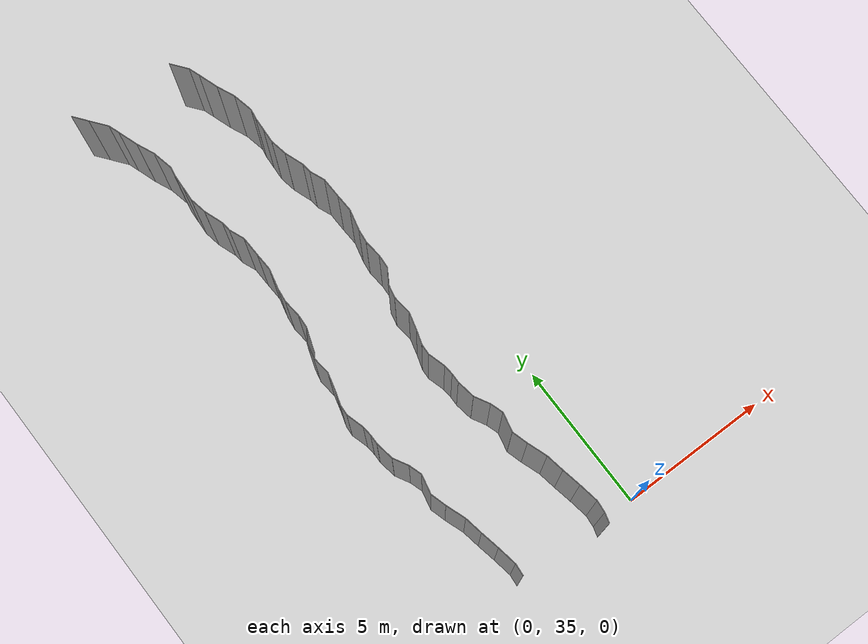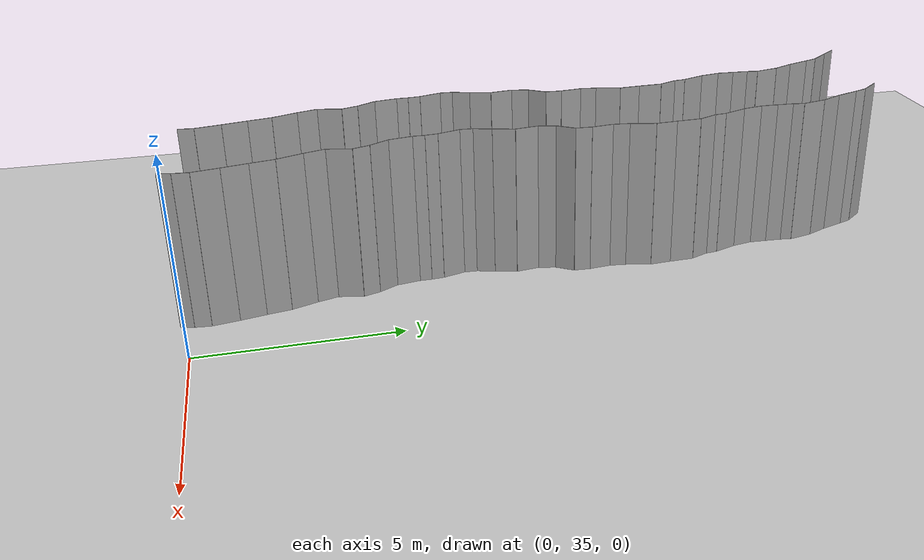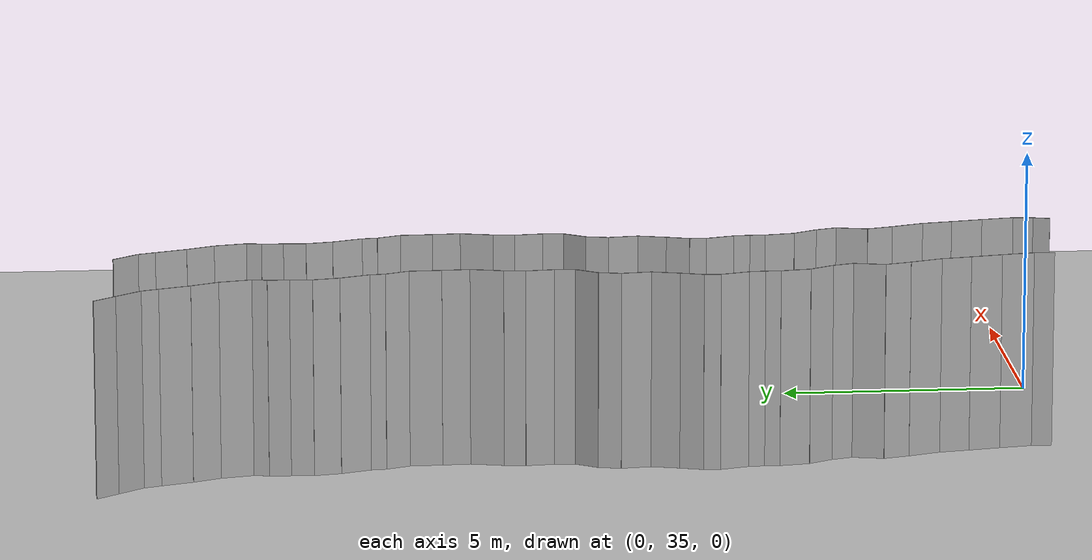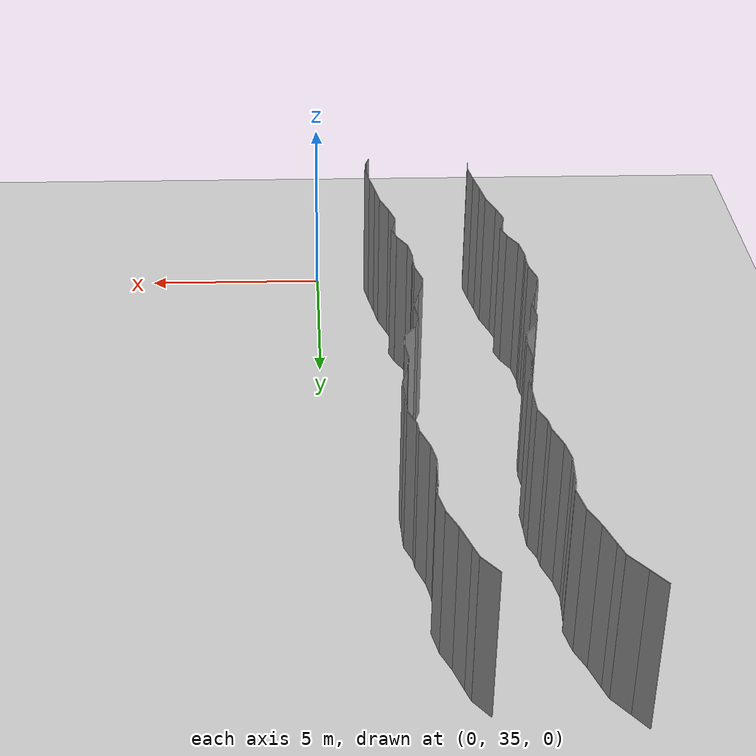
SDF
<sdf version="1.6">
 <world name="default">
  <model name="ground_plane">
   <static>1</static>
   <link name="link">
    <collision name="collision">
     <geometry><plane><normal>0 0 1</normal><size>200 200</size></plane></geometry>
     <surface><friction><ode><mu>100</mu><mu2>50</mu2></ode></friction></surface>
    </collision>
    <visual name="visual">
     <cast_shadows>0</cast_shadows>
     <geometry><plane><normal>0 0 1</normal><size>200 200</size></plane></geometry>
     <material>
      <script><uri>file://media/materials/scripts/gazebo.material</uri><name>Gazebo/Grey</name></script>
     </material>
    </visual>
   </link>
   <pose>0 100 0 0 -0 0</pose>
  </model>
  <model name="wall_149">
   <static>1</static>
   <pose>-1.4875432339443924 34.91481203085667 2 0 0 -0.2809620271610667</pose>
   <link name="link">
    <collision name="collision"><geometry><box><size>0.02 0.347489428314 4</size></box></geometry></collision>
    <visual name="visual">
     <material>
      <script><name>Gazebo/Grey</name><uri>file://media/materials/scripts/gazebo.material</uri></script>
     </material>
     <geometry><box><size>0.02 0.347489428314 4</size></box></geometry>
    </visual>
   </link>
  </model>
  <model name="wall_150">
   <static>1</static>
   <pose>-4.420657843224259 35.28480763675786 2 0 0 -0.09187649113899805</pose>
   <link name="link">
    <collision name="collision"><geometry><box><size>0.02 0.4078473137 4</size></box></geometry></collision>
    <visual name="visual">
     <material>
      <script><name>Gazebo/Grey</name><uri>file://media/materials/scripts/gazebo.material</uri></script>
     </material>
     <geometry><box><size>0.02 0.4078473137 4</size></box></geometry>
    </visual>
   </link>
  </model>
  <model name="wall_151">
   <static>1</static>
   <pose>-1.4206578432242587 35.28480763675786 2 0 0 -0.09187649113899805</pose>
   <link name="link">
    <collision name="collision"><geometry><box><size>0.02 0.4078473137 4</size></box></geometry></collision>
    <visual name="visual">
     <material>
      <script><name>Gazebo/Grey</name><uri>file://media/materials/scripts/gazebo.material</uri></script>
     </material>
     <geometry><box><size>0.02 0.4078473137 4</size></box></geometry>
    </visual>
   </link>
  </model>
  <model name="wall_152">
   <static>1</static>
   <pose>-4.45735182879271 35.81775944817107 2 0 0 0.16639322718188904</pose>
   <link name="link">
    <collision name="collision"><geometry><box><size>0.02 0.669016561162 4</size></box></geometry></collision>
    <visual name="visual">
     <material>
      <script><name>Gazebo/Grey</name><uri>file://media/materials/scripts/gazebo.material</uri></script>
     </material>
     <geometry><box><size>0.02 0.669016561162 4</size></box></geometry>
    </visual>
   </link>
  </model>
  <model name="wall_153">
   <static>1</static>
   <pose>-1.45735182879271 35.81775944817107 2 0 0 0.16639322718188904</pose>
   <link name="link">
    <collision name="collision"><geometry><box><size>0.02 0.669016561162 4</size></box></geometry></collision>
    <visual name="visual">
     <material>
      <script><name>Gazebo/Grey</name><uri>file://media/materials/scripts/gazebo.material</uri></script>
     </material>
     <geometry><box><size>0.02 0.669016561162 4</size></box></geometry>
    </visual>
   </link>
  </model>
  <model name="wall_154">
   <static>1</static>
   <pose>-4.575995451840966 36.46799275689906 2 0 0 0.19490656850193167</pose>
   <link name="link">
    <collision name="collision"><geometry><box><size>0.02 0.653055238869 4</size></box></geometry></collision>
    <visual name="visual">
     <material>
      <script><name>Gazebo/Grey</name><uri>file://media/materials/scripts/gazebo.material</uri></script>
     </material>
     <geometry><box><size>0.02 0.653055238869 4</size></box></geometry>
    </visual>
   </link>
  </model>
  <model name="wall_155">
   <static>1</static>
   <pose>-1.5759954518409662 36.46799275689906 2 0 0 0.19490656850193167</pose>
   <link name="link">
    <collision name="collision"><geometry><box><size>0.02 0.653055238869 4</size></box></geometry></collision>
    <visual name="visual">
     <material>
      <script><name>Gazebo/Grey</name><uri>file://media/materials/scripts/gazebo.material</uri></script>
     </material>
     <geometry><box><size>0.02 0.653055238869 4</size></box></geometry>
    </visual>
   </link>
  </model>
  <model name="wall_156">
   <static>1</static>
   <pose>-4.6920308699164615 37.092213756995 2 0 0 0.17202226703404905</pose>
   <link name="link">
    <collision name="collision"><geometry><box><size>0.02 0.61685627618 4</size></box></geometry></collision>
    <visual name="visual">
     <material>
      <script><name>Gazebo/Grey</name><uri>file://media/materials/scripts/gazebo.material</uri></script>
     </material>
     <geometry><box><size>0.02 0.61685627618 4</size></box></geometry>
    </visual>
   </link>
  </model>
  <model name="wall_157">
   <static>1</static>
   <pose>-1.6920308699164615 37.092213756995 2 0 0 0.17202226703404905</pose>
   <link name="link">
    <collision name="collision"><geometry><box><size>0.02 0.61685627618 4</size></box></geometry></collision>
    <visual name="visual">
     <material>
      <script><name>Gazebo/Grey</name><uri>file://media/materials/scripts/gazebo.material</uri></script>
     </material>
     <geometry><box><size>0.02 0.61685627618 4</size></box></geometry>
    </visual>
   </link>
  </model>
  <model name="wall_158">
   <static>1</static>
   <pose>-4.85910208446116 37.72054103686596 2 0 0 0.33864497295321705</pose>
   <link name="link">
    <collision name="collision"><geometry><box><size>0.02 0.687975815708 4</size></box></geometry></collision>
    <visual name="visual">
     <material>
      <script><name>Gazebo/Grey</name><uri>file://media/materials/scripts/gazebo.material</uri></script>
     </material>
     <geometry><box><size>0.02 0.687975815708 4</size></box></geometry>
    </visual>
   </link>
  </model>
  <model name="wall_159">
   <static>1</static>
   <pose>-1.8591020844611599 37.72054103686596 2 0 0 0.33864497295321705</pose>
   <link name="link">
    <collision name="collision"><geometry><box><size>0.02 0.687975815708 4</size></box></geometry></collision>
    <visual name="visual">
     <material>
      <script><name>Gazebo/Grey</name><uri>file://media/materials/scripts/gazebo.material</uri></script>
     </material>
     <geometry><box><size>0.02 0.687975815708 4</size></box></geometry>
    </visual>
   </link>
  </model>
  <model name="wall_160">
   <static>1</static>
   <pose>-5.0479114627293376 38.305604805208546 2 0 0 0.27855752877716256</pose>
   <link name="link">
    <collision name="collision"><geometry><box><size>0.02 0.542121972802 4</size></box></geometry></collision>
    <visual name="visual">
     <material>
      <script><name>Gazebo/Grey</name><uri>file://media/materials/scripts/gazebo.material</uri></script>
     </material>
     <geometry><box><size>0.02 0.542121972802 4</size></box></geometry>
    </visual>
   </link>
  </model>
  <model name="wall_161">
   <static>1</static>
   <pose>-2.0479114627293376 38.305604805208546 2 0 0 0.27855752877716256</pose>
   <link name="link">
    <collision name="collision"><geometry><box><size>0.02 0.542121972802 4</size></box></geometry></collision>
    <visual name="visual">
     <material>
      <script><name>Gazebo/Grey</name><uri>file://media/materials/scripts/gazebo.material</uri></script>
     </material>
     <geometry><box><size>0.02 0.542121972802 4</size></box></geometry>
    </visual>
   </link>
  </model>
  <model name="wall_162">
   <static>1</static>
   <pose>-5.052341891362449 38.881155504039235 2 0 0 -0.2190219485625343</pose>
   <link name="link">
    <collision name="collision"><geometry><box><size>0.02 0.645292321796 4</size></box></geometry></collision>
    <visual name="visual">
     <material>
      <script><name>Gazebo/Grey</name><uri>file://media/materials/scripts/gazebo.material</uri></script>
     </material>
     <geometry><box><size>0.02 0.645292321796 4</size></box></geometry>
    </visual>
   </link>
  </model>
  <model name="wall_163">
   <static>1</static>
   <pose>-2.052341891362449 38.881155504039235 2 0 0 -0.2190219485625343</pose>
   <link name="link">
    <collision name="collision"><geometry><box><size>0.02 0.645292321796 4</size></box></geometry></collision>
    <visual name="visual">
     <material>
      <script><name>Gazebo/Grey</name><uri>file://media/materials/scripts/gazebo.material</uri></script>
     </material>
     <geometry><box><size>0.02 0.645292321796 4</size></box></geometry>
    </visual>
   </link>
  </model>
  <model name="wall_164">
   <static>1</static>
   <pose>-5.049083734035631 39.407015942051316 2 0 0 0.30690374834488793</pose>
   <link name="link">
    <collision name="collision"><geometry><box><size>0.02 0.442521791259 4</size></box></geometry></collision>
    <visual name="visual">
     <material>
      <script><name>Gazebo/Grey</name><uri>file://media/materials/scripts/gazebo.material</uri></script>
     </material>
     <geometry><box><size>0.02 0.442521791259 4</size></box></geometry>
    </visual>
   </link>
  </model>
  <model name="wall_165">
   <static>1</static>
   <pose>-2.049083734035631 39.407015942051316 2 0 0 0.30690374834488793</pose>
   <link name="link">
    <collision name="collision"><geometry><box><size>0.02 0.442521791259 4</size></box></geometry></collision>
    <visual name="visual">
     <material>
      <script><name>Gazebo/Grey</name><uri>file://media/materials/scripts/gazebo.material</uri></script>
     </material>
     <geometry><box><size>0.02 0.442521791259 4</size></box></geometry>
    </visual>
   </link>
  </model>
  <model name="wall_166">
   <static>1</static>
   <pose>-5.2474371191167215 39.8571862735975 2 0 0 0.5025931576825445</pose>
   <link name="link">
    <collision name="collision"><geometry><box><size>0.02 0.546019034612 4</size></box></geometry></collision>
    <visual name="visual">
     <material>
      <script><name>Gazebo/Grey</name><uri>file://media/materials/scripts/gazebo.material</uri></script>
     </material>
     <geometry><box><size>0.02 0.546019034612 4</size></box></geometry>
    </visual>
   </link>
  </model>
  <model name="wall_167">
   <static>1</static>
   <pose>-2.2474371191167215 39.8571862735975 2 0 0 0.5025931576825445</pose>
   <link name="link">
    <collision name="collision"><geometry><box><size>0.02 0.546019034612 4</size></box></geometry></collision>
    <visual name="visual">
     <material>
      <script><name>Gazebo/Grey</name><uri>file://media/materials/scripts/gazebo.material</uri></script>
     </material>
     <geometry><box><size>0.02 0.546019034612 4</size></box></geometry>
    </visual>
   </link>
  </model>
  <model name="wall_168">
   <static>1</static>
   <pose>-5.4270500522193075 40.3981205687737 2 0 0 0.15812054965367323</pose>
   <link name="link">
    <collision name="collision"><geometry><box><size>0.02 0.610994416047 4</size></box></geometry></collision>
    <visual name="visual">
     <material>
      <script><name>Gazebo/Grey</name><uri>file://media/materials/scripts/gazebo.material</uri></script>
     </material>
     <geometry><box><size>0.02 0.610994416047 4</size></box></geometry>
    </visual>
   </link>
  </model>
  <model name="wall_169">
   <static>1</static>
   <pose>-2.4270500522193075 40.3981205687737 2 0 0 0.15812054965367323</pose>
   <link name="link">
    <collision name="collision"><geometry><box><size>0.02 0.610994416047 4</size></box></geometry></collision>
    <visual name="visual">
     <material>
      <script><name>Gazebo/Grey</name><uri>file://media/materials/scripts/gazebo.material</uri></script>
     </material>
     <geometry><box><size>0.02 0.610994416047 4</size></box></geometry>
    </visual>
   </link>
  </model>
  <model name="wall_170">
   <static>1</static>
   <pose>-5.471975973119589 40.85341780441025 2 0 0 -0.020688438781766887</pose>
   <link name="link">
    <collision name="collision"><geometry><box><size>0.02 0.307287987794 4</size></box></geometry></collision>
    <visual name="visual">
     <material>
      <script><name>Gazebo/Grey</name><uri>file://media/materials/scripts/gazebo.material</uri></script>
     </material>
     <geometry><box><size>0.02 0.307287987794 4</size></box></geometry>
    </visual>
   </link>
  </model>
  <model name="wall_171">
   <static>1</static>
   <pose>-2.471975973119589 40.85341780441025 2 0 0 -0.020688438781766887</pose>
   <link name="link">
    <collision name="collision"><geometry><box><size>0.02 0.307287987794 4</size></box></geometry></collision>
    <visual name="visual">
     <material>
      <script><name>Gazebo/Grey</name><uri>file://media/materials/scripts/gazebo.material</uri></script>
     </material>
     <geometry><box><size>0.02 0.307287987794 4</size></box></geometry>
    </visual>
   </link>
  </model>
  <model name="wall_172">
   <static>1</static>
   <pose>-5.482246295521538 41.170368032284514 2 0 0 0.08215106482147039</pose>
   <link name="link">
    <collision name="collision"><geometry><box><size>0.02 0.327783677915 4</size></box></geometry></collision>
    <visual name="visual">
     <material>
      <script><name>Gazebo/Grey</name><uri>file://media/materials/scripts/gazebo.material</uri></script>
     </material>
     <geometry><box><size>0.02 0.327783677915 4</size></box></geometry>
    </visual>
   </link>
  </model>
  <model name="wall_173">
   <static>1</static>
   <pose>-2.482246295521538 41.170368032284514 2 0 0 0.08215106482147039</pose>
   <link name="link">
    <collision name="collision"><geometry><box><size>0.02 0.327783677915 4</size></box></geometry></collision>
    <visual name="visual">
     <material>
      <script><name>Gazebo/Grey</name><uri>file://media/materials/scripts/gazebo.material</uri></script>
     </material>
     <geometry><box><size>0.02 0.327783677915 4</size></box></geometry>
    </visual>
   </link>
  </model>
  <model name="wall_174">
   <static>1</static>
   <pose>-5.578323106686289 41.621832671849816 2 0 0 0.27928281330052857</pose>
   <link name="link">
    <collision name="collision"><geometry><box><size>0.02 0.599478824506 4</size></box></geometry></collision>
    <visual name="visual">
     <material>
      <script><name>Gazebo/Grey</name><uri>file://media/materials/scripts/gazebo.material</uri></script>
     </material>
     <geometry><box><size>0.02 0.599478824506 4</size></box></geometry>
    </visual>
   </link>
  </model>
  <model name="wall_175">
   <static>1</static>
   <pose>-2.5783231066862893 41.621832671849816 2 0 0 0.27928281330052857</pose>
   <link name="link">
    <collision name="collision"><geometry><box><size>0.02 0.599478824506 4</size></box></geometry></collision>
    <visual name="visual">
     <material>
      <script><name>Gazebo/Grey</name><uri>file://media/materials/scripts/gazebo.material</uri></script>
     </material>
     <geometry><box><size>0.02 0.599478824506 4</size></box></geometry>
    </visual>
   </link>
  </model>
  <model name="wall_176">
   <static>1</static>
   <pose>-5.65174594275713 42.07693017324835 2 0 0 -0.055074607818771625</pose>
   <link name="link">
    <collision name="collision"><geometry><box><size>0.02 0.334451053018 4</size></box></geometry></collision>
    <visual name="visual">
     <material>
      <script><name>Gazebo/Grey</name><uri>file://media/materials/scripts/gazebo.material</uri></script>
     </material>
     <geometry><box><size>0.02 0.334451053018 4</size></box></geometry>
    </visual>
   </link>
  </model>
  <model name="wall_177">
   <static>1</static>
   <pose>-2.65174594275713 42.07693017324835 2 0 0 -0.055074607818771625</pose>
   <link name="link">
    <collision name="collision"><geometry><box><size>0.02 0.334451053018 4</size></box></geometry></collision>
    <visual name="visual">
     <material>
      <script><name>Gazebo/Grey</name><uri>file://media/materials/scripts/gazebo.material</uri></script>
     </material>
     <geometry><box><size>0.02 0.334451053018 4</size></box></geometry>
    </visual>
   </link>
  </model>
  <model name="wall_178">
   <static>1</static>
   <pose>-5.570120673829851 42.47377023275323 2 0 0 -0.3052067218791424</pose>
   <link name="link">
    <collision name="collision"><geometry><box><size>0.02 0.482012443288 4</size></box></geometry></collision>
    <visual name="visual">
     <material>
      <script><name>Gazebo/Grey</name><uri>file://media/materials/scripts/gazebo.material</uri></script>
     </material>
     <geometry><box><size>0.02 0.482012443288 4</size></box></geometry>
    </visual>
   </link>
  </model>
  <model name="wall_179">
   <static>1</static>
   <pose>-2.5701206738298508 42.47377023275323 2 0 0 -0.3052067218791424</pose>
   <link name="link">
    <collision name="collision"><geometry><box><size>0.02 0.482012443288 4</size></box></geometry></collision>
    <visual name="visual">
     <material>
      <script><name>Gazebo/Grey</name><uri>file://media/materials/scripts/gazebo.material</uri></script>
     </material>
     <geometry><box><size>0.02 0.482012443288 4</size></box></geometry>
    </visual>
   </link>
  </model>
  <model name="wall_180">
   <static>1</static>
   <pose>-5.423036233798773 42.98545675016245 2 0 0 -0.25898774518170503</pose>
   <link name="link">
    <collision name="collision"><geometry><box><size>0.02 0.583082846157 4</size></box></geometry></collision>
    <visual name="visual">
     <material>
      <script><name>Gazebo/Grey</name><uri>file://media/materials/scripts/gazebo.material</uri></script>
     </material>
     <geometry><box><size>0.02 0.583082846157 4</size></box></geometry>
    </visual>
   </link>
  </model>
  <model name="wall_181">
   <static>1</static>
   <pose>-2.423036233798773 42.98545675016245 2 0 0 -0.25898774518170503</pose>
   <link name="link">
    <collision name="collision"><geometry><box><size>0.02 0.583082846157 4</size></box></geometry></collision>
    <visual name="visual">
     <material>
      <script><name>Gazebo/Grey</name><uri>file://media/materials/scripts/gazebo.material</uri></script>
     </material>
     <geometry><box><size>0.02 0.583082846157 4</size></box></geometry>
    </visual>
   </link>
  </model>
  <model name="wall_182">
   <static>1</static>
   <pose>-5.384879340136272 43.56750002674529 2 0 0 0.1210064436026141</pose>
   <link name="link">
    <collision name="collision"><geometry><box><size>0.02 0.604872728101 4</size></box></geometry></collision>
    <visual name="visual">
     <material>
      <script><name>Gazebo/Grey</name><uri>file://media/materials/scripts/gazebo.material</uri></script>
     </material>
     <geometry><box><size>0.02 0.604872728101 4</size></box></geometry>
    </visual>
   </link>
  </model>
  <model name="wall_183">
   <static>1</static>
   <pose>-2.384879340136272 43.56750002674529 2 0 0 0.1210064436026141</pose>
   <link name="link">
    <collision name="collision"><geometry><box><size>0.02 0.604872728101 4</size></box></geometry></collision>
    <visual name="visual">
     <material>
      <script><name>Gazebo/Grey</name><uri>file://media/materials/scripts/gazebo.material</uri></script>
     </material>
     <geometry><box><size>0.02 0.604872728101 4</size></box></geometry>
    </visual>
   </link>
  </model>
  <model name="wall_184">
   <static>1</static>
   <pose>-5.372292053879199 44.091718126150006 2 0 0 -0.21576780015593758</pose>
   <link name="link">
    <collision name="collision"><geometry><box><size>0.02 0.458620876306 4</size></box></geometry></collision>
    <visual name="visual">
     <material>
      <script><name>Gazebo/Grey</name><uri>file://media/materials/scripts/gazebo.material</uri></script>
     </material>
     <geometry><box><size>0.02 0.458620876306 4</size></box></geometry>
    </visual>
   </link>
  </model>
  <model name="wall_185">
   <static>1</static>
   <pose>-2.3722920538791987 44.091718126150006 2 0 0 -0.21576780015593758</pose>
   <link name="link">
    <collision name="collision"><geometry><box><size>0.02 0.458620876306 4</size></box></geometry></collision>
    <visual name="visual">
     <material>
      <script><name>Gazebo/Grey</name><uri>file://media/materials/scripts/gazebo.material</uri></script>
     </material>
     <geometry><box><size>0.02 0.458620876306 4</size></box></geometry>
    </visual>
   </link>
  </model>
  <model name="wall_186">
   <static>1</static>
   <pose>-5.179622032423312 44.53244359930585 2 0 0 -0.5850808168382232</pose>
   <link name="link">
    <collision name="collision"><geometry><box><size>0.02 0.519948848892 4</size></box></geometry></collision>
    <visual name="visual">
     <material>
      <script><name>Gazebo/Grey</name><uri>file://media/materials/scripts/gazebo.material</uri></script>
     </material>
     <geometry><box><size>0.02 0.519948848892 4</size></box></geometry>
    </visual>
   </link>
  </model>
  <model name="wall_187">
   <static>1</static>
   <pose>-2.179622032423312 44.53244359930585 2 0 0 -0.5850808168382232</pose>
   <link name="link">
    <collision name="collision"><geometry><box><size>0.02 0.519948848892 4</size></box></geometry></collision>
    <visual name="visual">
     <material>
      <script><name>Gazebo/Grey</name><uri>file://media/materials/scripts/gazebo.material</uri></script>
     </material>
     <geometry><box><size>0.02 0.519948848892 4</size></box></geometry>
    </visual>
   </link>
  </model>
  <model name="wall_188">
   <static>1</static>
   <pose>-5.023441969631673 44.96117701328742 2 0 0 -0.05938649760130858</pose>
   <link name="link">
    <collision name="collision"><geometry><box><size>0.02 0.424751170564 4</size></box></geometry></collision>
    <visual name="visual">
     <material>
      <script><name>Gazebo/Grey</name><uri>file://media/materials/scripts/gazebo.material</uri></script>
     </material>
     <geometry><box><size>0.02 0.424751170564 4</size></box></geometry>
    </visual>
   </link>
  </model>
  <model name="wall_189">
   <static>1</static>
   <pose>-2.0234419696316728 44.96117701328742 2 0 0 -0.05938649760130858</pose>
   <link name="link">
    <collision name="collision"><geometry><box><size>0.02 0.424751170564 4</size></box></geometry></collision>
    <visual name="visual">
     <material>
      <script><name>Gazebo/Grey</name><uri>file://media/materials/scripts/gazebo.material</uri></script>
     </material>
     <geometry><box><size>0.02 0.424751170564 4</size></box></geometry>
    </visual>
   </link>
  </model>
  <model name="wall_190">
   <static>1</static>
   <pose>-5.0398265481780395 45.45788531156858 2 0 0 0.10147215407963889</pose>
   <link name="link">
    <collision name="collision"><geometry><box><size>0.02 0.572358347185 4</size></box></geometry></collision>
    <visual name="visual">
     <material>
      <script><name>Gazebo/Grey</name><uri>file://media/materials/scripts/gazebo.material</uri></script>
     </material>
     <geometry><box><size>0.02 0.572358347185 4</size></box></geometry>
    </visual>
   </link>
  </model>
  <model name="wall_191">
   <static>1</static>
   <pose>-2.0398265481780395 45.45788531156858 2 0 0 0.10147215407963889</pose>
   <link name="link">
    <collision name="collision"><geometry><box><size>0.02 0.572358347185 4</size></box></geometry></collision>
    <visual name="visual">
     <material>
      <script><name>Gazebo/Grey</name><uri>file://media/materials/scripts/gazebo.material</uri></script>
     </material>
     <geometry><box><size>0.02 0.572358347185 4</size></box></geometry>
    </visual>
   </link>
  </model>
  <model name="wall_192">
   <static>1</static>
   <pose>-5.0434240800590695 45.95756087720504 2 0 0 -0.11757429416704136</pose>
   <link name="link">
    <collision name="collision"><geometry><box><size>0.02 0.432925804383 4</size></box></geometry></collision>
    <visual name="visual">
     <material>
      <script><name>Gazebo/Grey</name><uri>file://media/materials/scripts/gazebo.material</uri></script>
     </material>
     <geometry><box><size>0.02 0.432925804383 4</size></box></geometry>
    </visual>
   </link>
  </model>
  <model name="wall_193">
   <static>1</static>
   <pose>-2.0434240800590695 45.95756087720504 2 0 0 -0.11757429416704136</pose>
   <link name="link">
    <collision name="collision"><geometry><box><size>0.02 0.432925804383 4</size></box></geometry></collision>
    <visual name="visual">
     <material>
      <script><name>Gazebo/Grey</name><uri>file://media/materials/scripts/gazebo.material</uri></script>
     </material>
     <geometry><box><size>0.02 0.432925804383 4</size></box></geometry>
    </visual>
   </link>
  </model>
  <model name="wall_194">
   <static>1</static>
   <pose>-4.938330339710692 46.502847476319495 2 0 0 -0.23676265179264905</pose>
   <link name="link">
    <collision name="collision"><geometry><box><size>0.02 0.679595342191 4</size></box></geometry></collision>
    <visual name="visual">
     <material>
      <script><name>Gazebo/Grey</name><uri>file://media/materials/scripts/gazebo.material</uri></script>
     </material>
     <geometry><box><size>0.02 0.679595342191 4</size></box></geometry>
    </visual>
   </link>
  </model>
  <model name="wall_195">
   <static>1</static>
   <pose>-1.9383303397106921 46.502847476319495 2 0 0 -0.23676265179264905</pose>
   <link name="link">
    <collision name="collision"><geometry><box><size>0.02 0.679595342191 4</size></box></geometry></collision>
    <visual name="visual">
     <material>
      <script><name>Gazebo/Grey</name><uri>file://media/materials/scripts/gazebo.material</uri></script>
     </material>
     <geometry><box><size>0.02 0.679595342191 4</size></box></geometry>
    </visual>
   </link>
  </model>
  <model name="wall_196">
   <static>1</static>
   <pose>-4.872255893611527 47.11378440139577 2 0 0 0.04852390753161887</pose>
   <link name="link">
    <collision name="collision"><geometry><box><size>0.02 0.561898965734 4</size></box></geometry></collision>
    <visual name="visual">
     <material>
      <script><name>Gazebo/Grey</name><uri>file://media/materials/scripts/gazebo.material</uri></script>
     </material>
     <geometry><box><size>0.02 0.561898965734 4</size></box></geometry>
    </visual>
   </link>
  </model>
  <model name="wall_197">
   <static>1</static>
   <pose>-1.872255893611527 47.11378440139577 2 0 0 0.04852390753161887</pose>
   <link name="link">
    <collision name="collision"><geometry><box><size>0.02 0.561898965734 4</size></box></geometry></collision>
    <visual name="visual">
     <material>
      <script><name>Gazebo/Grey</name><uri>file://media/materials/scripts/gazebo.material</uri></script>
     </material>
     <geometry><box><size>0.02 0.561898965734 4</size></box></geometry>
    </visual>
   </link>
  </model>
  <model name="wall_198">
   <static>1</static>
   <pose>-4.895493569818259 47.72122283407599 2 0 0 0.029396918045527798</pose>
   <link name="link">
    <collision name="collision"><geometry><box><size>0.02 0.653921817286 4</size></box></geometry></collision>
    <visual name="visual">
     <material>
      <script><name>Gazebo/Grey</name><uri>file://media/materials/scripts/gazebo.material</uri></script>
     </material>
     <geometry><box><size>0.02 0.653921817286 4</size></box></geometry>
    </visual>
   </link>
  </model>
  <model name="wall_199">
   <static>1</static>
   <pose>-1.8954935698182593 47.72122283407599 2 0 0 0.029396918045527798</pose>
   <link name="link">
    <collision name="collision"><geometry><box><size>0.02 0.653921817286 4</size></box></geometry></collision>
    <visual name="visual">
     <material>
      <script><name>Gazebo/Grey</name><uri>file://media/materials/scripts/gazebo.material</uri></script>
     </material>
     <geometry><box><size>0.02 0.653921817286 4</size></box></geometry>
    </visual>
   </link>
  </model>
  <model name="wall_200">
   <static>1</static>
   <pose>-5.002748110642078 48.28688675247213 2 0 0 0.38808650054299254</pose>
   <link name="link">
    <collision name="collision"><geometry><box><size>0.02 0.516065863879 4</size></box></geometry></collision>
    <visual name="visual">
     <material>
      <script><name>Gazebo/Grey</name><uri>file://media/materials/scripts/gazebo.material</uri></script>
     </material>
     <geometry><box><size>0.02 0.516065863879 4</size></box></geometry>
    </visual>
   </link>
  </model>
  <model name="wall_201">
   <static>1</static>
   <pose>-2.002748110642078 48.28688675247213 2 0 0 0.38808650054299254</pose>
   <link name="link">
    <collision name="collision"><geometry><box><size>0.02 0.516065863879 4</size></box></geometry></collision>
    <visual name="visual">
     <material>
      <script><name>Gazebo/Grey</name><uri>file://media/materials/scripts/gazebo.material</uri></script>
     </material>
     <geometry><box><size>0.02 0.516065863879 4</size></box></geometry>
    </visual>
   </link>
  </model>
  <model name="wall_202">
   <static>1</static>
   <pose>-5.1166783244961636 48.67933097401869 2 0 0 0.10563357508450805</pose>
   <link name="link">
    <collision name="collision"><geometry><box><size>0.02 0.30892183393 4</size></box></geometry></collision>
    <visual name="visual">
     <material>
      <script><name>Gazebo/Grey</name><uri>file://media/materials/scripts/gazebo.material</uri></script>
     </material>
     <geometry><box><size>0.02 0.30892183393 4</size></box></geometry>
    </visual>
   </link>
  </model>
  <model name="wall_203">
   <static>1</static>
   <pose>-2.1166783244961636 48.67933097401869 2 0 0 0.10563357508450805</pose>
   <link name="link">
    <collision name="collision"><geometry><box><size>0.02 0.30892183393 4</size></box></geometry></collision>
    <visual name="visual">
     <material>
      <script><name>Gazebo/Grey</name><uri>file://media/materials/scripts/gazebo.material</uri></script>
     </material>
     <geometry><box><size>0.02 0.30892183393 4</size></box></geometry>
    </visual>
   </link>
  </model>
  <model name="wall_204">
   <static>1</static>
   <pose>-5.241873920282788 49.13501883316466 2 0 0 0.34601856704139133</pose>
   <link name="link">
    <collision name="collision"><geometry><box><size>0.02 0.642241146028 4</size></box></geometry></collision>
    <visual name="visual">
     <material>
      <script><name>Gazebo/Grey</name><uri>file://media/materials/scripts/gazebo.material</uri></script>
     </material>
     <geometry><box><size>0.02 0.642241146028 4</size></box></geometry>
    </visual>
   </link>
  </model>
  <model name="wall_205">
   <static>1</static>
   <pose>-2.2418739202827878 49.13501883316466 2 0 0 0.34601856704139133</pose>
   <link name="link">
    <collision name="collision"><geometry><box><size>0.02 0.642241146028 4</size></box></geometry></collision>
    <visual name="visual">
     <material>
      <script><name>Gazebo/Grey</name><uri>file://media/materials/scripts/gazebo.material</uri></script>
     </material>
     <geometry><box><size>0.02 0.642241146028 4</size></box></geometry>
    </visual>
   </link>
  </model>
  <model name="wall_206">
   <static>1</static>
   <pose>-5.401209580560905 49.70723845585844 2 0 0 0.18454784304672842</pose>
   <link name="link">
    <collision name="collision"><geometry><box><size>0.02 0.549595929385 4</size></box></geometry></collision>
    <visual name="visual">
     <material>
      <script><name>Gazebo/Grey</name><uri>file://media/materials/scripts/gazebo.material</uri></script>
     </material>
     <geometry><box><size>0.02 0.549595929385 4</size></box></geometry>
    </visual>
   </link>
  </model>
  <model name="wall_207">
   <static>1</static>
   <pose>-2.401209580560905 49.70723845585844 2 0 0 0.18454784304672842</pose>
   <link name="link">
    <collision name="collision"><geometry><box><size>0.02 0.549595929385 4</size></box></geometry></collision>
    <visual name="visual">
     <material>
      <script><name>Gazebo/Grey</name><uri>file://media/materials/scripts/gazebo.material</uri></script>
     </material>
     <geometry><box><size>0.02 0.549595929385 4</size></box></geometry>
    </visual>
   </link>
  </model>
  <model name="wall_208">
   <static>1</static>
   <pose>-5.440032611597887 50.204712899538656 2 0 0 -0.0509930808079427</pose>
   <link name="link">
    <collision name="collision"><geometry><box><size>0.02 0.4552772682 4</size></box></geometry></collision>
    <visual name="visual">
     <material>
      <script><name>Gazebo/Grey</name><uri>file://media/materials/scripts/gazebo.material</uri></script>
     </material>
     <geometry><box><size>0.02 0.4552772682 4</size></box></geometry>
    </visual>
   </link>
  </model>
  <model name="wall_209">
   <static>1</static>
   <pose>-2.4400326115978874 50.204712899538656 2 0 0 -0.0509930808079427</pose>
   <link name="link">
    <collision name="collision"><geometry><box><size>0.02 0.4552772682 4</size></box></geometry></collision>
    <visual name="visual">
     <material>
      <script><name>Gazebo/Grey</name><uri>file://media/materials/scripts/gazebo.material</uri></script>
     </material>
     <geometry><box><size>0.02 0.4552772682 4</size></box></geometry>
    </visual>
   </link>
  </model>
  <model name="wall_210">
   <static>1</static>
   <pose>-5.416641811607836 50.65033432383029 2 0 0 -0.053951191901438954</pose>
   <link name="link">
    <collision name="collision"><geometry><box><size>0.02 0.437193501612 4</size></box></geometry></collision>
    <visual name="visual">
     <material>
      <script><name>Gazebo/Grey</name><uri>file://media/materials/scripts/gazebo.material</uri></script>
     </material>
     <geometry><box><size>0.02 0.437193501612 4</size></box></geometry>
    </visual>
   </link>
  </model>
  <model name="wall_211">
   <static>1</static>
   <pose>-2.4166418116078363 50.65033432383029 2 0 0 -0.053951191901438954</pose>
   <link name="link">
    <collision name="collision"><geometry><box><size>0.02 0.437193501612 4</size></box></geometry></collision>
    <visual name="visual">
     <material>
      <script><name>Gazebo/Grey</name><uri>file://media/materials/scripts/gazebo.material</uri></script>
     </material>
     <geometry><box><size>0.02 0.437193501612 4</size></box></geometry>
    </visual>
   </link>
  </model>
  <model name="wall_212">
   <static>1</static>
   <pose>-5.37804532194799 51.01941712303293 2 0 0 -0.17593342525572486</pose>
   <link name="link">
    <collision name="collision"><geometry><box><size>0.02 0.30633696084 4</size></box></geometry></collision>
    <visual name="visual">
     <material>
      <script><name>Gazebo/Grey</name><uri>file://media/materials/scripts/gazebo.material</uri></script>
     </material>
     <geometry><box><size>0.02 0.30633696084 4</size></box></geometry>
    </visual>
   </link>
  </model>
  <model name="wall_213">
   <static>1</static>
   <pose>-2.3780453219479902 51.01941712303293 2 0 0 -0.17593342525572486</pose>
   <link name="link">
    <collision name="collision"><geometry><box><size>0.02 0.30633696084 4</size></box></geometry></collision>
    <visual name="visual">
     <material>
      <script><name>Gazebo/Grey</name><uri>file://media/materials/scripts/gazebo.material</uri></script>
     </material>
     <geometry><box><size>0.02 0.30633696084 4</size></box></geometry>
    </visual>
   </link>
  </model>
  <model name="wall_214">
   <static>1</static>
   <pose>-5.42293639790049 51.498621713108356 2 0 0 0.21495700109539906</pose>
   <link name="link">
    <collision name="collision"><geometry><box><size>0.02 0.672272941888 4</size></box></geometry></collision>
    <visual name="visual">
     <material>
      <script><name>Gazebo/Grey</name><uri>file://media/materials/scripts/gazebo.material</uri></script>
     </material>
     <geometry><box><size>0.02 0.672272941888 4</size></box></geometry>
    </visual>
   </link>
  </model>
  <model name="wall_215">
   <static>1</static>
   <pose>-2.4229363979004903 51.498621713108356 2 0 0 0.21495700109539906</pose>
   <link name="link">
    <collision name="collision"><geometry><box><size>0.02 0.672272941888 4</size></box></geometry></collision>
    <visual name="visual">
     <material>
      <script><name>Gazebo/Grey</name><uri>file://media/materials/scripts/gazebo.material</uri></script>
     </material>
     <geometry><box><size>0.02 0.672272941888 4</size></box></geometry>
    </visual>
   </link>
  </model>
  <model name="wall_216">
   <static>1</static>
   <pose>-5.6174956647239 52.105447628148525 2 0 0 0.4155666101382832</pose>
   <link name="link">
    <collision name="collision"><geometry><box><size>0.02 0.608654871313 4</size></box></geometry></collision>
    <visual name="visual">
     <material>
      <script><name>Gazebo/Grey</name><uri>file://media/materials/scripts/gazebo.material</uri></script>
     </material>
     <geometry><box><size>0.02 0.608654871313 4</size></box></geometry>
    </visual>
   </link>
  </model>
  <model name="wall_217">
   <static>1</static>
   <pose>-2.6174956647239 52.105447628148525 2 0 0 0.4155666101382832</pose>
   <link name="link">
    <collision name="collision"><geometry><box><size>0.02 0.608654871313 4</size></box></geometry></collision>
    <visual name="visual">
     <material>
      <script><name>Gazebo/Grey</name><uri>file://media/materials/scripts/gazebo.material</uri></script>
     </material>
     <geometry><box><size>0.02 0.608654871313 4</size></box></geometry>
    </visual>
   </link>
  </model>
  <model name="wall_218">
   <static>1</static>
   <pose>-5.848447307077943 52.70046737789856 2 0 0 0.32901215745423723</pose>
   <link name="link">
    <collision name="collision"><geometry><box><size>0.02 0.669076569557 4</size></box></geometry></collision>
    <visual name="visual">
     <material>
      <script><name>Gazebo/Grey</name><uri>file://media/materials/scripts/gazebo.material</uri></script>
     </material>
     <geometry><box><size>0.02 0.669076569557 4</size></box></geometry>
    </visual>
   </link>
  </model>
  <model name="wall_219">
   <static>1</static>
   <pose>-2.848447307077943 52.70046737789856 2 0 0 0.32901215745423723</pose>
   <link name="link">
    <collision name="collision"><geometry><box><size>0.02 0.669076569557 4</size></box></geometry></collision>
    <visual name="visual">
     <material>
      <script><name>Gazebo/Grey</name><uri>file://media/materials/scripts/gazebo.material</uri></script>
     </material>
     <geometry><box><size>0.02 0.669076569557 4</size></box></geometry>
    </visual>
   </link>
  </model>
  <model name="wall_220">
   <static>1</static>
   <pose>-6.017108729135501 53.189736490452965 2 0 0 0.33736153659305584</pose>
   <link name="link">
    <collision name="collision"><geometry><box><size>0.02 0.365979385137 4</size></box></geometry></collision>
    <visual name="visual">
     <material>
      <script><name>Gazebo/Grey</name><uri>file://media/materials/scripts/gazebo.material</uri></script>
     </material>
     <geometry><box><size>0.02 0.365979385137 4</size></box></geometry>
    </visual>
   </link>
  </model>
  <model name="wall_221">
   <static>1</static>
   <pose>-3.0171087291355008 53.189736490452965 2 0 0 0.33736153659305584</pose>
   <link name="link">
    <collision name="collision"><geometry><box><size>0.02 0.365979385137 4</size></box></geometry></collision>
    <visual name="visual">
     <material>
      <script><name>Gazebo/Grey</name><uri>file://media/materials/scripts/gazebo.material</uri></script>
     </material>
     <geometry><box><size>0.02 0.365979385137 4</size></box></geometry>
    </visual>
   </link>
  </model>
  <model name="wall_222">
   <static>1</static>
   <pose>-6.273517818768244 53.61504178064247 2 0 0 0.6594365299274165</pose>
   <link name="link">
    <collision name="collision"><geometry><box><size>0.02 0.639297686696 4</size></box></geometry></collision>
    <visual name="visual">
     <material>
      <script><name>Gazebo/Grey</name><uri>file://media/materials/scripts/gazebo.material</uri></script>
     </material>
     <geometry><box><size>0.02 0.639297686696 4</size></box></geometry>
    </visual>
   </link>
  </model>
  <model name="wall_223">
   <static>1</static>
   <pose>-3.2735178187682443 53.61504178064247 2 0 0 0.6594365299274165</pose>
   <link name="link">
    <collision name="collision"><geometry><box><size>0.02 0.639297686696 4</size></box></geometry></collision>
    <visual name="visual">
     <material>
      <script><name>Gazebo/Grey</name><uri>file://media/materials/scripts/gazebo.material</uri></script>
     </material>
     <geometry><box><size>0.02 0.639297686696 4</size></box></geometry>
    </visual>
   </link>
  </model>
  <model name="wall_224">
   <static>1</static>
   <pose>-6.638130687132862 54.08529775657432 2 0 0 0.6596353758319379</pose>
   <link name="link">
    <collision name="collision"><geometry><box><size>0.02 0.550800175091 4</size></box></geometry></collision>
    <visual name="visual">
     <material>
      <script><name>Gazebo/Grey</name><uri>file://media/materials/scripts/gazebo.material</uri></script>
     </material>
     <geometry><box><size>0.02 0.550800175091 4</size></box></geometry>
    </visual>
   </link>
  </model>
 </world>
</sdf>
